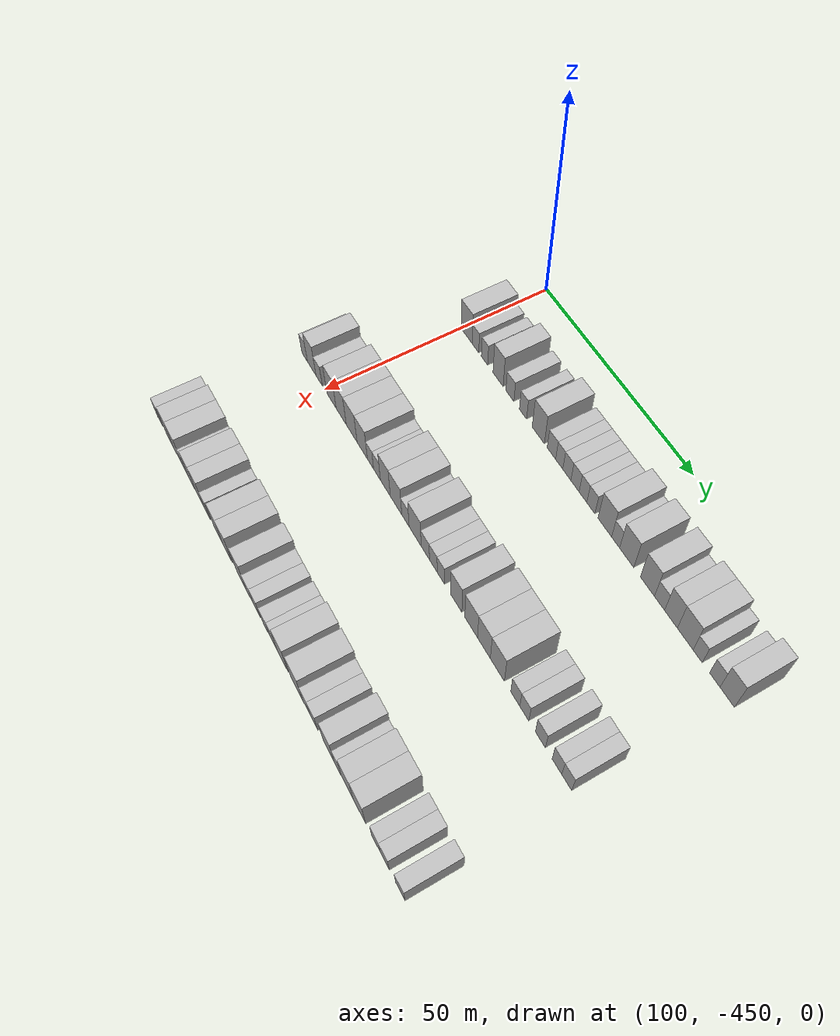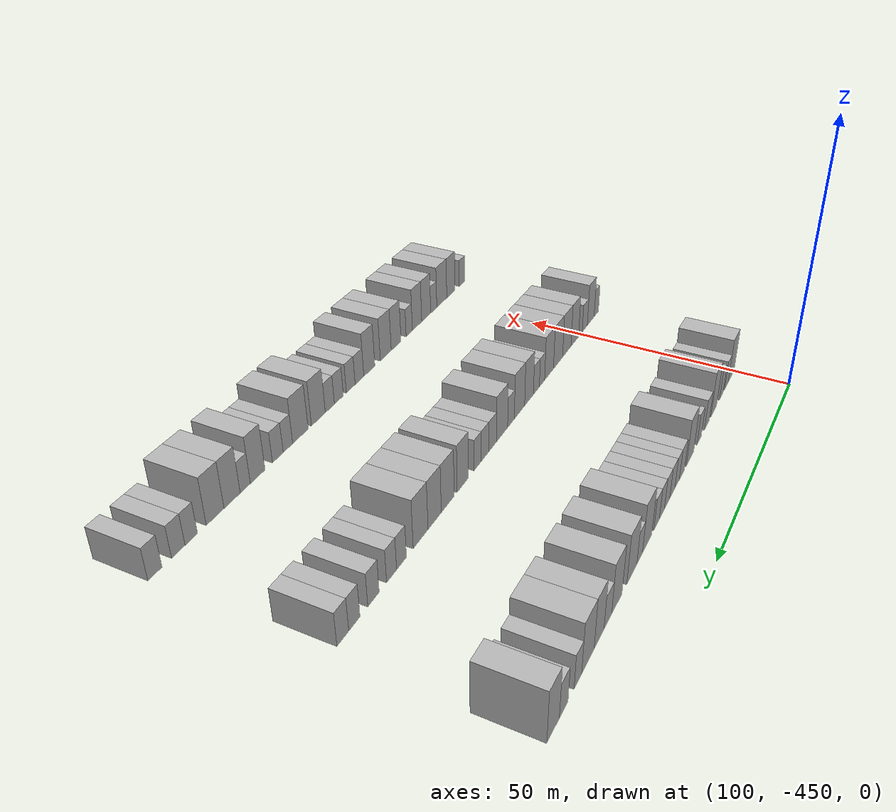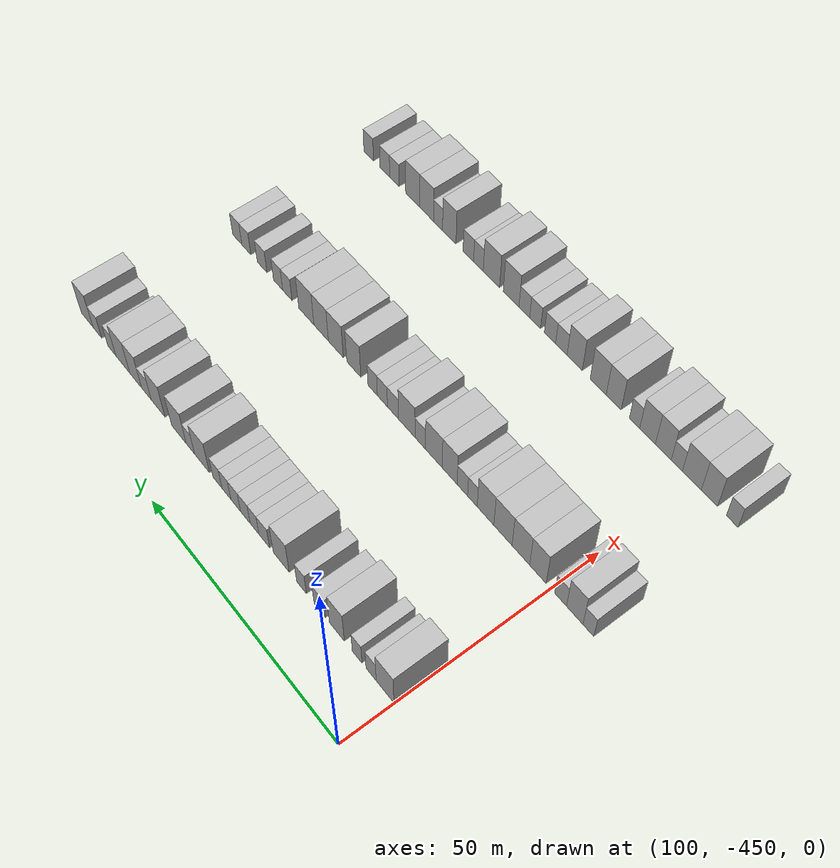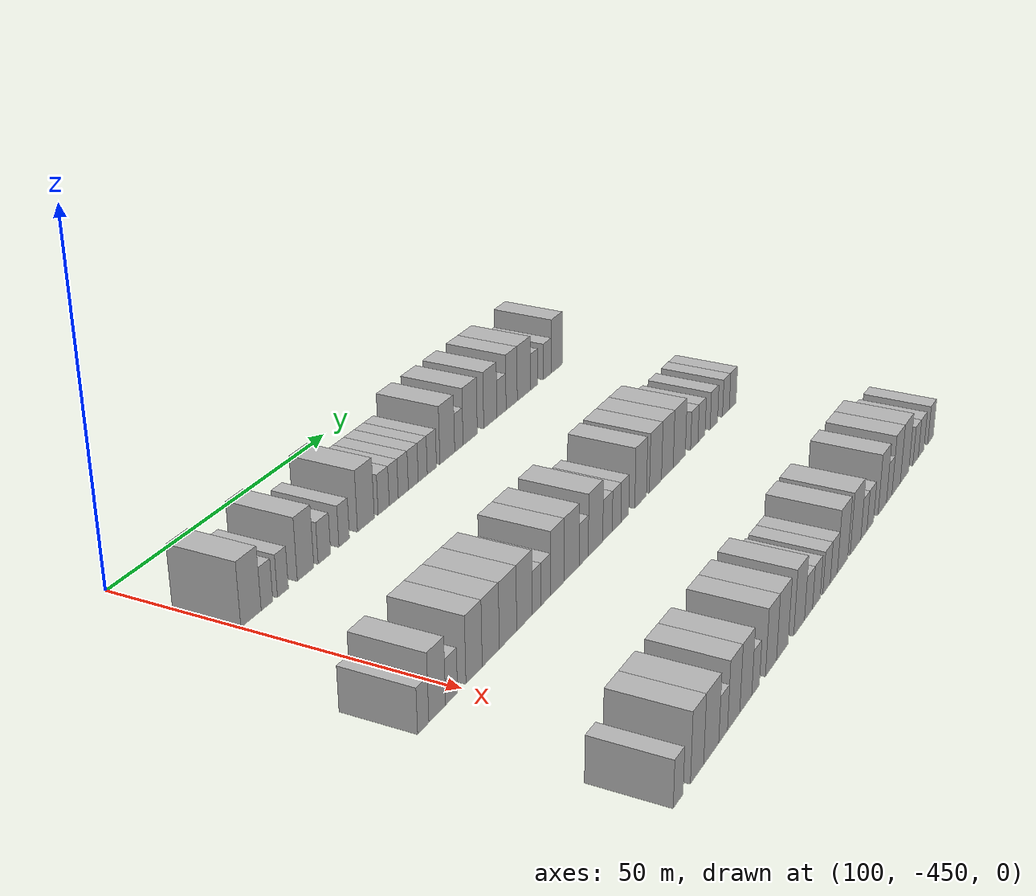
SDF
<sdf version="1.6">
 <world name="default">
  <model name="building_712">
   <static>1</static>
   <pose>115.0000 -447.8181 0 0.000000 0.000000 0.000000</pose>
   <link name="link">
    <pose>0 0 4.50 0 0 0</pose>
    <collision name="collision"><geometry><box><size>10.0000 4.3004 9.0000</size></box></geometry></collision>
    <visual name="visual">
     <cast_shadows>0</cast_shadows>
     <geometry><box><size>10.0000 4.3004 9.0000</size></box></geometry>
     <material>
      <script>
       <uri>model://HANNAS_wall/materials/scripts</uri>
       <uri>model://HANNAS_wall/materials/textures</uri>
       <name>vrc/HANNAS_wall</name>
      </script>
     </material>
    </visual>
   </link>
  </model>
  <model name="building_713">
   <static>1</static>
   <pose>115.0000 -444.4069 0 0.000000 0.000000 0.000000</pose>
   <link name="link">
    <pose>0 0 3.00 0 0 0</pose>
    <collision name="collision"><geometry><box><size>10.0000 2.5220 6.0000</size></box></geometry></collision>
    <visual name="visual">
     <cast_shadows>0</cast_shadows>
     <geometry><box><size>10.0000 2.5220 6.0000</size></box></geometry>
     <material>
      <script>
       <uri>model://HANNAS_wall/materials/scripts</uri>
       <uri>model://HANNAS_wall/materials/textures</uri>
       <name>vrc/HANNAS_wall</name>
      </script>
     </material>
    </visual>
   </link>
  </model>
  <model name="building_714">
   <static>1</static>
   <pose>115.0000 -440.9302 0 0.000000 0.000000 0.000000</pose>
   <link name="link">
    <pose>0 0 3.00 0 0 0</pose>
    <collision name="collision"><geometry><box><size>10.0000 2.4313 6.0000</size></box></geometry></collision>
    <visual name="visual">
     <cast_shadows>0</cast_shadows>
     <geometry><box><size>10.0000 2.4313 6.0000</size></box></geometry>
     <material>
      <script>
       <uri>model://HANNAS_wall/materials/scripts</uri>
       <uri>model://HANNAS_wall/materials/textures</uri>
       <name>vrc/HANNAS_wall</name>
      </script>
     </material>
    </visual>
   </link>
  </model>
  <model name="building_715">
   <static>1</static>
   <pose>115.0000 -435.8096 0 0.000000 0.000000 0.000000</pose>
   <link name="link">
    <pose>0 0 4.50 0 0 0</pose>
    <collision name="collision"><geometry><box><size>10.0000 3.8099 9.0000</size></box></geometry></collision>
    <visual name="visual">
     <cast_shadows>0</cast_shadows>
     <geometry><box><size>10.0000 3.8099 9.0000</size></box></geometry>
     <material>
      <script>
       <uri>model://HANNAS_wall/materials/scripts</uri>
       <uri>model://HANNAS_wall/materials/textures</uri>
       <name>vrc/HANNAS_wall</name>
      </script>
     </material>
    </visual>
   </link>
  </model>
  <model name="building_716">
   <static>1</static>
   <pose>115.0000 -431.4215 0 0.000000 0.000000 0.000000</pose>
   <link name="link">
    <pose>0 0 3.00 0 0 0</pose>
    <collision name="collision"><geometry><box><size>10.0000 2.9664 6.0000</size></box></geometry></collision>
    <visual name="visual">
     <cast_shadows>0</cast_shadows>
     <geometry><box><size>10.0000 2.9664 6.0000</size></box></geometry>
     <material>
      <script>
       <uri>model://HANNAS_wall/materials/scripts</uri>
       <uri>model://HANNAS_wall/materials/textures</uri>
       <name>vrc/HANNAS_wall</name>
      </script>
     </material>
    </visual>
   </link>
  </model>
  <model name="building_717">
   <static>1</static>
   <pose>115.0000 -426.6577 0 0.000000 0.000000 0.000000</pose>
   <link name="link">
    <pose>0 0 3.00 0 0 0</pose>
    <collision name="collision"><geometry><box><size>10.0000 2.5613 6.0000</size></box></geometry></collision>
    <visual name="visual">
     <cast_shadows>0</cast_shadows>
     <geometry><box><size>10.0000 2.5613 6.0000</size></box></geometry>
     <material>
      <script>
       <uri>model://HANNAS_wall/materials/scripts</uri>
       <uri>model://HANNAS_wall/materials/textures</uri>
       <name>vrc/HANNAS_wall</name>
      </script>
     </material>
    </visual>
   </link>
  </model>
  <model name="building_718">
   <static>1</static>
   <pose>115.0000 -421.2447 0 0.000000 0.000000 0.000000</pose>
   <link name="link">
    <pose>0 0 4.50 0 0 0</pose>
    <collision name="collision"><geometry><box><size>10.0000 4.2646 9.0000</size></box></geometry></collision>
    <visual name="visual">
     <cast_shadows>0</cast_shadows>
     <geometry><box><size>10.0000 4.2646 9.0000</size></box></geometry>
     <material>
      <script>
       <uri>model://HANNAS_wall/materials/scripts</uri>
       <uri>model://HANNAS_wall/materials/textures</uri>
       <name>vrc/HANNAS_wall</name>
      </script>
     </material>
    </visual>
   </link>
  </model>
  <model name="building_719">
   <static>1</static>
   <pose>115.0000 -416.6565 0 0.000000 0.000000 0.000000</pose>
   <link name="link">
    <pose>0 0 3.00 0 0 0</pose>
    <collision name="collision"><geometry><box><size>10.0000 2.9118 6.0000</size></box></geometry></collision>
    <visual name="visual">
     <cast_shadows>0</cast_shadows>
     <geometry><box><size>10.0000 2.9118 6.0000</size></box></geometry>
     <material>
      <script>
       <uri>model://HANNAS_wall/materials/scripts</uri>
       <uri>model://HANNAS_wall/materials/textures</uri>
       <name>vrc/HANNAS_wall</name>
      </script>
     </material>
    </visual>
   </link>
  </model>
  <model name="building_720">
   <static>1</static>
   <pose>115.0000 -413.9962 0 0.000000 0.000000 0.000000</pose>
   <link name="link">
    <pose>0 0 3.00 0 0 0</pose>
    <collision name="collision"><geometry><box><size>10.0000 2.4090 6.0000</size></box></geometry></collision>
    <visual name="visual">
     <cast_shadows>0</cast_shadows>
     <geometry><box><size>10.0000 2.4090 6.0000</size></box></geometry>
     <material>
      <script>
       <uri>model://HANNAS_wall/materials/scripts</uri>
       <uri>model://HANNAS_wall/materials/textures</uri>
       <name>vrc/HANNAS_wall</name>
      </script>
     </material>
    </visual>
   </link>
  </model>
  <model name="building_721">
   <static>1</static>
   <pose>115.0000 -411.4315 0 0.000000 0.000000 0.000000</pose>
   <link name="link">
    <pose>0 0 3.00 0 0 0</pose>
    <collision name="collision"><geometry><box><size>10.0000 2.7204 6.0000</size></box></geometry></collision>
    <visual name="visual">
     <cast_shadows>0</cast_shadows>
     <geometry><box><size>10.0000 2.7204 6.0000</size></box></geometry>
     <material>
      <script>
       <uri>model://HANNAS_wall/materials/scripts</uri>
       <uri>model://HANNAS_wall/materials/textures</uri>
       <name>vrc/HANNAS_wall</name>
      </script>
     </material>
    </visual>
   </link>
  </model>
  <model name="building_722">
   <static>1</static>
   <pose>115.0000 -408.7054 0 0.000000 0.000000 0.000000</pose>
   <link name="link">
    <pose>0 0 3.00 0 0 0</pose>
    <collision name="collision"><geometry><box><size>10.0000 2.7317 6.0000</size></box></geometry></collision>
    <visual name="visual">
     <cast_shadows>0</cast_shadows>
     <geometry><box><size>10.0000 2.7317 6.0000</size></box></geometry>
     <material>
      <script>
       <uri>model://HANNAS_wall/materials/scripts</uri>
       <uri>model://HANNAS_wall/materials/textures</uri>
       <name>vrc/HANNAS_wall</name>
      </script>
     </material>
    </visual>
   </link>
  </model>
  <model name="building_723">
   <static>1</static>
   <pose>115.0000 -406.0790 0 0.000000 0.000000 0.000000</pose>
   <link name="link">
    <pose>0 0 3.00 0 0 0</pose>
    <collision name="collision"><geometry><box><size>10.0000 2.5212 6.0000</size></box></geometry></collision>
    <visual name="visual">
     <cast_shadows>0</cast_shadows>
     <geometry><box><size>10.0000 2.5212 6.0000</size></box></geometry>
     <material>
      <script>
       <uri>model://HANNAS_wall/materials/scripts</uri>
       <uri>model://HANNAS_wall/materials/textures</uri>
       <name>vrc/HANNAS_wall</name>
      </script>
     </material>
    </visual>
   </link>
  </model>
  <model name="building_724">
   <static>1</static>
   <pose>115.0000 -403.5086 0 0.000000 0.000000 0.000000</pose>
   <link name="link">
    <pose>0 0 3.00 0 0 0</pose>
    <collision name="collision"><geometry><box><size>10.0000 2.6195 6.0000</size></box></geometry></collision>
    <visual name="visual">
     <cast_shadows>0</cast_shadows>
     <geometry><box><size>10.0000 2.6195 6.0000</size></box></geometry>
     <material>
      <script>
       <uri>model://HANNAS_wall/materials/scripts</uri>
       <uri>model://HANNAS_wall/materials/textures</uri>
       <name>vrc/HANNAS_wall</name>
      </script>
     </material>
    </visual>
   </link>
  </model>
  <model name="building_725">
   <static>1</static>
   <pose>115.0000 -399.0320 0 0.000000 0.000000 0.000000</pose>
   <link name="link">
    <pose>0 0 4.50 0 0 0</pose>
    <collision name="collision"><geometry><box><size>10.0000 4.3337 9.0000</size></box></geometry></collision>
    <visual name="visual">
     <cast_shadows>0</cast_shadows>
     <geometry><box><size>10.0000 4.3337 9.0000</size></box></geometry>
     <material>
      <script>
       <uri>model://HANNAS_wall/materials/scripts</uri>
       <uri>model://HANNAS_wall/materials/textures</uri>
       <name>vrc/HANNAS_wall</name>
      </script>
     </material>
    </visual>
   </link>
  </model>
  <model name="building_726">
   <static>1</static>
   <pose>115.0000 -395.6186 0 0.000000 0.000000 0.000000</pose>
   <link name="link">
    <pose>0 0 3.00 0 0 0</pose>
    <collision name="collision"><geometry><box><size>10.0000 2.4930 6.0000</size></box></geometry></collision>
    <visual name="visual">
     <cast_shadows>0</cast_shadows>
     <geometry><box><size>10.0000 2.4930 6.0000</size></box></geometry>
     <material>
      <script>
       <uri>model://HANNAS_wall/materials/scripts</uri>
       <uri>model://HANNAS_wall/materials/textures</uri>
       <name>vrc/HANNAS_wall</name>
      </script>
     </material>
    </visual>
   </link>
  </model>
  <model name="building_727">
   <static>1</static>
   <pose>115.0000 -392.2005 0 0.000000 0.000000 0.000000</pose>
   <link name="link">
    <pose>0 0 4.50 0 0 0</pose>
    <collision name="collision"><geometry><box><size>10.0000 4.3433 9.0000</size></box></geometry></collision>
    <visual name="visual">
     <cast_shadows>0</cast_shadows>
     <geometry><box><size>10.0000 4.3433 9.0000</size></box></geometry>
     <material>
      <script>
       <uri>model://HANNAS_wall/materials/scripts</uri>
       <uri>model://HANNAS_wall/materials/textures</uri>
       <name>vrc/HANNAS_wall</name>
      </script>
     </material>
    </visual>
   </link>
  </model>
  <model name="building_728">
   <static>1</static>
   <pose>115.0000 -385.9359 0 0.000000 0.000000 0.000000</pose>
   <link name="link">
    <pose>0 0 4.50 0 0 0</pose>
    <collision name="collision"><geometry><box><size>10.0000 4.1857 9.0000</size></box></geometry></collision>
    <visual name="visual">
     <cast_shadows>0</cast_shadows>
     <geometry><box><size>10.0000 4.1857 9.0000</size></box></geometry>
     <material>
      <script>
       <uri>model://HANNAS_wall/materials/scripts</uri>
       <uri>model://HANNAS_wall/materials/textures</uri>
       <name>vrc/HANNAS_wall</name>
      </script>
     </material>
    </visual>
   </link>
  </model>
  <model name="building_729">
   <static>1</static>
   <pose>115.0000 -382.3604 0 0.000000 0.000000 0.000000</pose>
   <link name="link">
    <pose>0 0 3.00 0 0 0</pose>
    <collision name="collision"><geometry><box><size>10.0000 2.9652 6.0000</size></box></geometry></collision>
    <visual name="visual">
     <cast_shadows>0</cast_shadows>
     <geometry><box><size>10.0000 2.9652 6.0000</size></box></geometry>
     <material>
      <script>
       <uri>model://HANNAS_wall/materials/scripts</uri>
       <uri>model://HANNAS_wall/materials/textures</uri>
       <name>vrc/HANNAS_wall</name>
      </script>
     </material>
    </visual>
   </link>
  </model>
  <model name="building_730">
   <static>1</static>
   <pose>115.0000 -379.0342 0 0.000000 0.000000 0.000000</pose>
   <link name="link">
    <pose>0 0 4.50 0 0 0</pose>
    <collision name="collision"><geometry><box><size>10.0000 3.6872 9.0000</size></box></geometry></collision>
    <visual name="visual">
     <cast_shadows>0</cast_shadows>
     <geometry><box><size>10.0000 3.6872 9.0000</size></box></geometry>
     <material>
      <script>
       <uri>model://HANNAS_wall/materials/scripts</uri>
       <uri>model://HANNAS_wall/materials/textures</uri>
       <name>vrc/HANNAS_wall</name>
      </script>
     </material>
    </visual>
   </link>
  </model>
  <model name="building_731">
   <static>1</static>
   <pose>115.0000 -374.9744 0 0.000000 0.000000 0.000000</pose>
   <link name="link">
    <pose>0 0 4.50 0 0 0</pose>
    <collision name="collision"><geometry><box><size>10.0000 4.4325 9.0000</size></box></geometry></collision>
    <visual name="visual">
     <cast_shadows>0</cast_shadows>
     <geometry><box><size>10.0000 4.4325 9.0000</size></box></geometry>
     <material>
      <script>
       <uri>model://HANNAS_wall/materials/scripts</uri>
       <uri>model://HANNAS_wall/materials/textures</uri>
       <name>vrc/HANNAS_wall</name>
      </script>
     </material>
    </visual>
   </link>
  </model>
  <model name="building_732">
   <static>1</static>
   <pose>115.0000 -371.4761 0 0.000000 0.000000 0.000000</pose>
   <link name="link">
    <pose>0 0 3.00 0 0 0</pose>
    <collision name="collision"><geometry><box><size>10.0000 2.5641 6.0000</size></box></geometry></collision>
    <visual name="visual">
     <cast_shadows>0</cast_shadows>
     <geometry><box><size>10.0000 2.5641 6.0000</size></box></geometry>
     <material>
      <script>
       <uri>model://HANNAS_wall/materials/scripts</uri>
       <uri>model://HANNAS_wall/materials/textures</uri>
       <name>vrc/HANNAS_wall</name>
      </script>
     </material>
    </visual>
   </link>
  </model>
  <model name="building_733">
   <static>1</static>
   <pose>115.0000 -366.7879 0 0.000000 0.000000 0.000000</pose>
   <link name="link">
    <pose>0 0 3.00 0 0 0</pose>
    <collision name="collision"><geometry><box><size>10.0000 2.8123 6.0000</size></box></geometry></collision>
    <visual name="visual">
     <cast_shadows>0</cast_shadows>
     <geometry><box><size>10.0000 2.8123 6.0000</size></box></geometry>
     <material>
      <script>
       <uri>model://HANNAS_wall/materials/scripts</uri>
       <uri>model://HANNAS_wall/materials/textures</uri>
       <name>vrc/HANNAS_wall</name>
      </script>
     </material>
    </visual>
   </link>
  </model>
  <model name="building_734">
   <static>1</static>
   <pose>115.0000 -363.4518 0 0.000000 0.000000 0.000000</pose>
   <link name="link">
    <pose>0 0 4.50 0 0 0</pose>
    <collision name="collision"><geometry><box><size>10.0000 3.8599 9.0000</size></box></geometry></collision>
    <visual name="visual">
     <cast_shadows>0</cast_shadows>
     <geometry><box><size>10.0000 3.8599 9.0000</size></box></geometry>
     <material>
      <script>
       <uri>model://HANNAS_wall/materials/scripts</uri>
       <uri>model://HANNAS_wall/materials/textures</uri>
       <name>vrc/HANNAS_wall</name>
      </script>
     </material>
    </visual>
   </link>
  </model>
  <model name="building_944">
   <static>1</static>
   <pose>145.0000 -458.7607 0 0.000000 0.000000 0.000000</pose>
   <link name="link">
    <pose>0 0 3.00 0 0 0</pose>
    <collision name="collision"><geometry><box><size>10.0000 2.4785 6.0000</size></box></geometry></collision>
    <visual name="visual">
     <cast_shadows>0</cast_shadows>
     <geometry><box><size>10.0000 2.4785 6.0000</size></box></geometry>
     <material>
      <script>
       <uri>model://HANNAS_wall/materials/scripts</uri>
       <uri>model://HANNAS_wall/materials/textures</uri>
       <name>vrc/HANNAS_wall</name>
      </script>
     </material>
    </visual>
   </link>
  </model>
  <model name="building_945">
   <static>1</static>
   <pose>145.0000 -455.6250 0 0.000000 0.000000 0.000000</pose>
   <link name="link">
    <pose>0 0 4.50 0 0 0</pose>
    <collision name="collision"><geometry><box><size>10.0000 3.7929 9.0000</size></box></geometry></collision>
    <visual name="visual">
     <cast_shadows>0</cast_shadows>
     <geometry><box><size>10.0000 3.7929 9.0000</size></box></geometry>
     <material>
      <script>
       <uri>model://HANNAS_wall/materials/scripts</uri>
       <uri>model://HANNAS_wall/materials/textures</uri>
       <name>vrc/HANNAS_wall</name>
      </script>
     </material>
    </visual>
   </link>
  </model>
  <model name="building_946">
   <static>1</static>
   <pose>145.0000 -452.3560 0 0.000000 0.000000 0.000000</pose>
   <link name="link">
    <pose>0 0 3.00 0 0 0</pose>
    <collision name="collision"><geometry><box><size>10.0000 2.7452 6.0000</size></box></geometry></collision>
    <visual name="visual">
     <cast_shadows>0</cast_shadows>
     <geometry><box><size>10.0000 2.7452 6.0000</size></box></geometry>
     <material>
      <script>
       <uri>model://HANNAS_wall/materials/scripts</uri>
       <uri>model://HANNAS_wall/materials/textures</uri>
       <name>vrc/HANNAS_wall</name>
      </script>
     </material>
    </visual>
   </link>
  </model>
  <model name="building_947">
   <static>1</static>
   <pose>145.0000 -447.0132 0 0.000000 0.000000 0.000000</pose>
   <link name="link">
    <pose>0 0 4.50 0 0 0</pose>
    <collision name="collision"><geometry><box><size>10.0000 3.9402 9.0000</size></box></geometry></collision>
    <visual name="visual">
     <cast_shadows>0</cast_shadows>
     <geometry><box><size>10.0000 3.9402 9.0000</size></box></geometry>
     <material>
      <script>
       <uri>model://HANNAS_wall/materials/scripts</uri>
       <uri>model://HANNAS_wall/materials/textures</uri>
       <name>vrc/HANNAS_wall</name>
      </script>
     </material>
    </visual>
   </link>
  </model>
  <model name="building_948">
   <static>1</static>
   <pose>145.0000 -442.9166 0 0.000000 0.000000 0.000000</pose>
   <link name="link">
    <pose>0 0 4.50 0 0 0</pose>
    <collision name="collision"><geometry><box><size>10.0000 4.2531 9.0000</size></box></geometry></collision>
    <visual name="visual">
     <cast_shadows>0</cast_shadows>
     <geometry><box><size>10.0000 4.2531 9.0000</size></box></geometry>
     <material>
      <script>
       <uri>model://HANNAS_wall/materials/scripts</uri>
       <uri>model://HANNAS_wall/materials/textures</uri>
       <name>vrc/HANNAS_wall</name>
      </script>
     </material>
    </visual>
   </link>
  </model>
  <model name="building_949">
   <static>1</static>
   <pose>145.0000 -438.5523 0 0.000000 0.000000 0.000000</pose>
   <link name="link">
    <pose>0 0 4.50 0 0 0</pose>
    <collision name="collision"><geometry><box><size>10.0000 4.4755 9.0000</size></box></geometry></collision>
    <visual name="visual">
     <cast_shadows>0</cast_shadows>
     <geometry><box><size>10.0000 4.4755 9.0000</size></box></geometry>
     <material>
      <script>
       <uri>model://HANNAS_wall/materials/scripts</uri>
       <uri>model://HANNAS_wall/materials/textures</uri>
       <name>vrc/HANNAS_wall</name>
      </script>
     </material>
    </visual>
   </link>
  </model>
  <model name="building_950">
   <static>1</static>
   <pose>145.0000 -434.2355 0 0.000000 0.000000 0.000000</pose>
   <link name="link">
    <pose>0 0 4.50 0 0 0</pose>
    <collision name="collision"><geometry><box><size>10.0000 4.1579 9.0000</size></box></geometry></collision>
    <visual name="visual">
     <cast_shadows>0</cast_shadows>
     <geometry><box><size>10.0000 4.1579 9.0000</size></box></geometry>
     <material>
      <script>
       <uri>model://HANNAS_wall/materials/scripts</uri>
       <uri>model://HANNAS_wall/materials/textures</uri>
       <name>vrc/HANNAS_wall</name>
      </script>
     </material>
    </visual>
   </link>
  </model>
  <model name="building_951">
   <static>1</static>
   <pose>145.0000 -430.9520 0 0.000000 0.000000 0.000000</pose>
   <link name="link">
    <pose>0 0 3.00 0 0 0</pose>
    <collision name="collision"><geometry><box><size>10.0000 2.4091 6.0000</size></box></geometry></collision>
    <visual name="visual">
     <cast_shadows>0</cast_shadows>
     <geometry><box><size>10.0000 2.4091 6.0000</size></box></geometry>
     <material>
      <script>
       <uri>model://HANNAS_wall/materials/scripts</uri>
       <uri>model://HANNAS_wall/materials/textures</uri>
       <name>vrc/HANNAS_wall</name>
      </script>
     </material>
    </visual>
   </link>
  </model>
  <model name="building_952">
   <static>1</static>
   <pose>145.0000 -428.4079 0 0.000000 0.000000 0.000000</pose>
   <link name="link">
    <pose>0 0 3.00 0 0 0</pose>
    <collision name="collision"><geometry><box><size>10.0000 2.6790 6.0000</size></box></geometry></collision>
    <visual name="visual">
     <cast_shadows>0</cast_shadows>
     <geometry><box><size>10.0000 2.6790 6.0000</size></box></geometry>
     <material>
      <script>
       <uri>model://HANNAS_wall/materials/scripts</uri>
       <uri>model://HANNAS_wall/materials/textures</uri>
       <name>vrc/HANNAS_wall</name>
      </script>
     </material>
    </visual>
   </link>
  </model>
  <model name="building_953">
   <static>1</static>
   <pose>145.0000 -425.1473 0 0.000000 0.000000 0.000000</pose>
   <link name="link">
    <pose>0 0 4.50 0 0 0</pose>
    <collision name="collision"><geometry><box><size>10.0000 3.8423 9.0000</size></box></geometry></collision>
    <visual name="visual">
     <cast_shadows>0</cast_shadows>
     <geometry><box><size>10.0000 3.8423 9.0000</size></box></geometry>
     <material>
      <script>
       <uri>model://HANNAS_wall/materials/scripts</uri>
       <uri>model://HANNAS_wall/materials/textures</uri>
       <name>vrc/HANNAS_wall</name>
      </script>
     </material>
    </visual>
   </link>
  </model>
  <model name="building_954">
   <static>1</static>
   <pose>145.0000 -421.0540 0 0.000000 0.000000 0.000000</pose>
   <link name="link">
    <pose>0 0 4.50 0 0 0</pose>
    <collision name="collision"><geometry><box><size>10.0000 4.3444 9.0000</size></box></geometry></collision>
    <visual name="visual">
     <cast_shadows>0</cast_shadows>
     <geometry><box><size>10.0000 4.3444 9.0000</size></box></geometry>
     <material>
      <script>
       <uri>model://HANNAS_wall/materials/scripts</uri>
       <uri>model://HANNAS_wall/materials/textures</uri>
       <name>vrc/HANNAS_wall</name>
      </script>
     </material>
    </visual>
   </link>
  </model>
  <model name="building_955">
   <static>1</static>
   <pose>145.0000 -417.5041 0 0.000000 0.000000 0.000000</pose>
   <link name="link">
    <pose>0 0 3.00 0 0 0</pose>
    <collision name="collision"><geometry><box><size>10.0000 2.7552 6.0000</size></box></geometry></collision>
    <visual name="visual">
     <cast_shadows>0</cast_shadows>
     <geometry><box><size>10.0000 2.7552 6.0000</size></box></geometry>
     <material>
      <script>
       <uri>model://HANNAS_wall/materials/scripts</uri>
       <uri>model://HANNAS_wall/materials/textures</uri>
       <name>vrc/HANNAS_wall</name>
      </script>
     </material>
    </visual>
   </link>
  </model>
  <model name="building_956">
   <static>1</static>
   <pose>145.0000 -413.9074 0 0.000000 0.000000 0.000000</pose>
   <link name="link">
    <pose>0 0 4.50 0 0 0</pose>
    <collision name="collision"><geometry><box><size>10.0000 4.4382 9.0000</size></box></geometry></collision>
    <visual name="visual">
     <cast_shadows>0</cast_shadows>
     <geometry><box><size>10.0000 4.4382 9.0000</size></box></geometry>
     <material>
      <script>
       <uri>model://HANNAS_wall/materials/scripts</uri>
       <uri>model://HANNAS_wall/materials/textures</uri>
       <name>vrc/HANNAS_wall</name>
      </script>
     </material>
    </visual>
   </link>
  </model>
  <model name="building_957">
   <static>1</static>
   <pose>145.0000 -410.1915 0 0.000000 0.000000 0.000000</pose>
   <link name="link">
    <pose>0 0 3.00 0 0 0</pose>
    <collision name="collision"><geometry><box><size>10.0000 2.9937 6.0000</size></box></geometry></collision>
    <visual name="visual">
     <cast_shadows>0</cast_shadows>
     <geometry><box><size>10.0000 2.9937 6.0000</size></box></geometry>
     <material>
      <script>
       <uri>model://HANNAS_wall/materials/scripts</uri>
       <uri>model://HANNAS_wall/materials/textures</uri>
       <name>vrc/HANNAS_wall</name>
      </script>
     </material>
    </visual>
   </link>
  </model>
  <model name="building_958">
   <static>1</static>
   <pose>145.0000 -407.3139 0 0.000000 0.000000 0.000000</pose>
   <link name="link">
    <pose>0 0 3.00 0 0 0</pose>
    <collision name="collision"><geometry><box><size>10.0000 2.7615 6.0000</size></box></geometry></collision>
    <visual name="visual">
     <cast_shadows>0</cast_shadows>
     <geometry><box><size>10.0000 2.7615 6.0000</size></box></geometry>
     <material>
      <script>
       <uri>model://HANNAS_wall/materials/scripts</uri>
       <uri>model://HANNAS_wall/materials/textures</uri>
       <name>vrc/HANNAS_wall</name>
      </script>
     </material>
    </visual>
   </link>
  </model>
  <model name="building_959">
   <static>1</static>
   <pose>145.0000 -404.6447 0 0.000000 0.000000 0.000000</pose>
   <link name="link">
    <pose>0 0 3.00 0 0 0</pose>
    <collision name="collision"><geometry><box><size>10.0000 2.5768 6.0000</size></box></geometry></collision>
    <visual name="visual">
     <cast_shadows>0</cast_shadows>
     <geometry><box><size>10.0000 2.5768 6.0000</size></box></geometry>
     <material>
      <script>
       <uri>model://HANNAS_wall/materials/scripts</uri>
       <uri>model://HANNAS_wall/materials/textures</uri>
       <name>vrc/HANNAS_wall</name>
      </script>
     </material>
    </visual>
   </link>
  </model>
  <model name="building_960">
   <static>1</static>
   <pose>145.0000 -399.3787 0 0.000000 0.000000 0.000000</pose>
   <link name="link">
    <pose>0 0 4.50 0 0 0</pose>
    <collision name="collision"><geometry><box><size>10.0000 3.9552 9.0000</size></box></geometry></collision>
    <visual name="visual">
     <cast_shadows>0</cast_shadows>
     <geometry><box><size>10.0000 3.9552 9.0000</size></box></geometry>
     <material>
      <script>
       <uri>model://HANNAS_wall/materials/scripts</uri>
       <uri>model://HANNAS_wall/materials/textures</uri>
       <name>vrc/HANNAS_wall</name>
      </script>
     </material>
    </visual>
   </link>
  </model>
  <model name="building_961">
   <static>1</static>
   <pose>145.0000 -394.2776 0 0.000000 0.000000 0.000000</pose>
   <link name="link">
    <pose>0 0 4.50 0 0 0</pose>
    <collision name="collision"><geometry><box><size>10.0000 4.2470 9.0000</size></box></geometry></collision>
    <visual name="visual">
     <cast_shadows>0</cast_shadows>
     <geometry><box><size>10.0000 4.2470 9.0000</size></box></geometry>
     <material>
      <script>
       <uri>model://HANNAS_wall/materials/scripts</uri>
       <uri>model://HANNAS_wall/materials/textures</uri>
       <name>vrc/HANNAS_wall</name>
      </script>
     </material>
    </visual>
   </link>
  </model>
  <model name="building_962">
   <static>1</static>
   <pose>145.0000 -390.0511 0 0.000000 0.000000 0.000000</pose>
   <link name="link">
    <pose>0 0 4.50 0 0 0</pose>
    <collision name="collision"><geometry><box><size>10.0000 4.2060 9.0000</size></box></geometry></collision>
    <visual name="visual">
     <cast_shadows>0</cast_shadows>
     <geometry><box><size>10.0000 4.2060 9.0000</size></box></geometry>
     <material>
      <script>
       <uri>model://HANNAS_wall/materials/scripts</uri>
       <uri>model://HANNAS_wall/materials/textures</uri>
       <name>vrc/HANNAS_wall</name>
      </script>
     </material>
    </visual>
   </link>
  </model>
  <model name="building_963">
   <static>1</static>
   <pose>145.0000 -385.7084 0 0.000000 0.000000 0.000000</pose>
   <link name="link">
    <pose>0 0 4.50 0 0 0</pose>
    <collision name="collision"><geometry><box><size>10.0000 4.4795 9.0000</size></box></geometry></collision>
    <visual name="visual">
     <cast_shadows>0</cast_shadows>
     <geometry><box><size>10.0000 4.4795 9.0000</size></box></geometry>
     <material>
      <script>
       <uri>model://HANNAS_wall/materials/scripts</uri>
       <uri>model://HANNAS_wall/materials/textures</uri>
       <name>vrc/HANNAS_wall</name>
      </script>
     </material>
    </visual>
   </link>
  </model>
  <model name="building_964">
   <static>1</static>
   <pose>145.0000 -380.0653 0 0.000000 0.000000 0.000000</pose>
   <link name="link">
    <pose>0 0 3.00 0 0 0</pose>
    <collision name="collision"><geometry><box><size>10.0000 2.8068 6.0000</size></box></geometry></collision>
    <visual name="visual">
     <cast_shadows>0</cast_shadows>
     <geometry><box><size>10.0000 2.8068 6.0000</size></box></geometry>
     <material>
      <script>
       <uri>model://HANNAS_wall/materials/scripts</uri>
       <uri>model://HANNAS_wall/materials/textures</uri>
       <name>vrc/HANNAS_wall</name>
      </script>
     </material>
    </visual>
   </link>
  </model>
  <model name="building_965">
   <static>1</static>
   <pose>145.0000 -377.2795 0 0.000000 0.000000 0.000000</pose>
   <link name="link">
    <pose>0 0 3.00 0 0 0</pose>
    <collision name="collision"><geometry><box><size>10.0000 2.7648 6.0000</size></box></geometry></collision>
    <visual name="visual">
     <cast_shadows>0</cast_shadows>
     <geometry><box><size>10.0000 2.7648 6.0000</size></box></geometry>
     <material>
      <script>
       <uri>model://HANNAS_wall/materials/scripts</uri>
       <uri>model://HANNAS_wall/materials/textures</uri>
       <name>vrc/HANNAS_wall</name>
      </script>
     </material>
    </visual>
   </link>
  </model>
  <model name="building_966">
   <static>1</static>
   <pose>145.0000 -372.4047 0 0.000000 0.000000 0.000000</pose>
   <link name="link">
    <pose>0 0 3.00 0 0 0</pose>
    <collision name="collision"><geometry><box><size>10.0000 2.9848 6.0000</size></box></geometry></collision>
    <visual name="visual">
     <cast_shadows>0</cast_shadows>
     <geometry><box><size>10.0000 2.9848 6.0000</size></box></geometry>
     <material>
      <script>
       <uri>model://HANNAS_wall/materials/scripts</uri>
       <uri>model://HANNAS_wall/materials/textures</uri>
       <name>vrc/HANNAS_wall</name>
      </script>
     </material>
    </visual>
   </link>
  </model>
  <model name="building_967">
   <static>1</static>
   <pose>145.0000 -367.5128 0 0.000000 0.000000 0.000000</pose>
   <link name="link">
    <pose>0 0 3.00 0 0 0</pose>
    <collision name="collision"><geometry><box><size>10.0000 2.7992 6.0000</size></box></geometry></collision>
    <visual name="visual">
     <cast_shadows>0</cast_shadows>
     <geometry><box><size>10.0000 2.7992 6.0000</size></box></geometry>
     <material>
      <script>
       <uri>model://HANNAS_wall/materials/scripts</uri>
       <uri>model://HANNAS_wall/materials/textures</uri>
       <name>vrc/HANNAS_wall</name>
      </script>
     </material>
    </visual>
   </link>
  </model>
  <model name="building_968">
   <static>1</static>
   <pose>145.0000 -364.6813 0 0.000000 0.000000 0.000000</pose>
   <link name="link">
    <pose>0 0 3.00 0 0 0</pose>
    <collision name="collision"><geometry><box><size>10.0000 2.8637 6.0000</size></box></geometry></collision>
    <visual name="visual">
     <cast_shadows>0</cast_shadows>
     <geometry><box><size>10.0000 2.8637 6.0000</size></box></geometry>
     <material>
      <script>
       <uri>model://HANNAS_wall/materials/scripts</uri>
       <uri>model://HANNAS_wall/materials/textures</uri>
       <name>vrc/HANNAS_wall</name>
      </script>
     </material>
    </visual>
   </link>
  </model>
  <model name="building_1161">
   <static>1</static>
   <pose>175.0000 -458.6805 0 0.000000 0.000000 0.000000</pose>
   <link name="link">
    <pose>0 0 3.00 0 0 0</pose>
    <collision name="collision"><geometry><box><size>10.0000 2.6391 6.0000</size></box></geometry></collision>
    <visual name="visual">
     <cast_shadows>0</cast_shadows>
     <geometry><box><size>10.0000 2.6391 6.0000</size></box></geometry>
     <material>
      <script>
       <uri>model://HANNAS_wall/materials/scripts</uri>
       <uri>model://HANNAS_wall/materials/textures</uri>
       <name>vrc/HANNAS_wall</name>
      </script>
     </material>
    </visual>
   </link>
  </model>
  <model name="building_1162">
   <static>1</static>
   <pose>175.0000 -453.5025 0 0.000000 0.000000 0.000000</pose>
   <link name="link">
    <pose>0 0 4.50 0 0 0</pose>
    <collision name="collision"><geometry><box><size>10.0000 3.7169 9.0000</size></box></geometry></collision>
    <visual name="visual">
     <cast_shadows>0</cast_shadows>
     <geometry><box><size>10.0000 3.7169 9.0000</size></box></geometry>
     <material>
      <script>
       <uri>model://HANNAS_wall/materials/scripts</uri>
       <uri>model://HANNAS_wall/materials/textures</uri>
       <name>vrc/HANNAS_wall</name>
      </script>
     </material>
    </visual>
   </link>
  </model>
  <model name="building_1163">
   <static>1</static>
   <pose>175.0000 -449.4606 0 0.000000 0.000000 0.000000</pose>
   <link name="link">
    <pose>0 0 4.50 0 0 0</pose>
    <collision name="collision"><geometry><box><size>10.0000 4.3670 9.0000</size></box></geometry></collision>
    <visual name="visual">
     <cast_shadows>0</cast_shadows>
     <geometry><box><size>10.0000 4.3670 9.0000</size></box></geometry>
     <material>
      <script>
       <uri>model://HANNAS_wall/materials/scripts</uri>
       <uri>model://HANNAS_wall/materials/textures</uri>
       <name>vrc/HANNAS_wall</name>
      </script>
     </material>
    </visual>
   </link>
  </model>
  <model name="building_1164">
   <static>1</static>
   <pose>175.0000 -445.9668 0 0.000000 0.000000 0.000000</pose>
   <link name="link">
    <pose>0 0 3.00 0 0 0</pose>
    <collision name="collision"><geometry><box><size>10.0000 2.6204 6.0000</size></box></geometry></collision>
    <visual name="visual">
     <cast_shadows>0</cast_shadows>
     <geometry><box><size>10.0000 2.6204 6.0000</size></box></geometry>
     <material>
      <script>
       <uri>model://HANNAS_wall/materials/scripts</uri>
       <uri>model://HANNAS_wall/materials/textures</uri>
       <name>vrc/HANNAS_wall</name>
      </script>
     </material>
    </visual>
   </link>
  </model>
  <model name="building_1165">
   <static>1</static>
   <pose>175.0000 -442.7825 0 0.000000 0.000000 0.000000</pose>
   <link name="link">
    <pose>0 0 4.50 0 0 0</pose>
    <collision name="collision"><geometry><box><size>10.0000 3.7482 9.0000</size></box></geometry></collision>
    <visual name="visual">
     <cast_shadows>0</cast_shadows>
     <geometry><box><size>10.0000 3.7482 9.0000</size></box></geometry>
     <material>
      <script>
       <uri>model://HANNAS_wall/materials/scripts</uri>
       <uri>model://HANNAS_wall/materials/textures</uri>
       <name>vrc/HANNAS_wall</name>
      </script>
     </material>
    </visual>
   </link>
  </model>
  <model name="building_1166">
   <static>1</static>
   <pose>175.0000 -439.0245 0 0.000000 0.000000 0.000000</pose>
   <link name="link">
    <pose>0 0 4.50 0 0 0</pose>
    <collision name="collision"><geometry><box><size>10.0000 3.7677 9.0000</size></box></geometry></collision>
    <visual name="visual">
     <cast_shadows>0</cast_shadows>
     <geometry><box><size>10.0000 3.7677 9.0000</size></box></geometry>
     <material>
      <script>
       <uri>model://HANNAS_wall/materials/scripts</uri>
       <uri>model://HANNAS_wall/materials/textures</uri>
       <name>vrc/HANNAS_wall</name>
      </script>
     </material>
    </visual>
   </link>
  </model>
  <model name="building_1167">
   <static>1</static>
   <pose>175.0000 -435.8946 0 0.000000 0.000000 0.000000</pose>
   <link name="link">
    <pose>0 0 3.00 0 0 0</pose>
    <collision name="collision"><geometry><box><size>10.0000 2.4921 6.0000</size></box></geometry></collision>
    <visual name="visual">
     <cast_shadows>0</cast_shadows>
     <geometry><box><size>10.0000 2.4921 6.0000</size></box></geometry>
     <material>
      <script>
       <uri>model://HANNAS_wall/materials/scripts</uri>
       <uri>model://HANNAS_wall/materials/textures</uri>
       <name>vrc/HANNAS_wall</name>
      </script>
     </material>
    </visual>
   </link>
  </model>
  <model name="building_1168">
   <static>1</static>
   <pose>175.0000 -430.7901 0 0.000000 0.000000 0.000000</pose>
   <link name="link">
    <pose>0 0 4.50 0 0 0</pose>
    <collision name="collision"><geometry><box><size>10.0000 3.7171 9.0000</size></box></geometry></collision>
    <visual name="visual">
     <cast_shadows>0</cast_shadows>
     <geometry><box><size>10.0000 3.7171 9.0000</size></box></geometry>
     <material>
      <script>
       <uri>model://HANNAS_wall/materials/scripts</uri>
       <uri>model://HANNAS_wall/materials/textures</uri>
       <name>vrc/HANNAS_wall</name>
      </script>
     </material>
    </visual>
   </link>
  </model>
  <model name="building_1169">
   <static>1</static>
   <pose>175.0000 -426.9254 0 0.000000 0.000000 0.000000</pose>
   <link name="link">
    <pose>0 0 4.50 0 0 0</pose>
    <collision name="collision"><geometry><box><size>10.0000 4.0122 9.0000</size></box></geometry></collision>
    <visual name="visual">
     <cast_shadows>0</cast_shadows>
     <geometry><box><size>10.0000 4.0122 9.0000</size></box></geometry>
     <material>
      <script>
       <uri>model://HANNAS_wall/materials/scripts</uri>
       <uri>model://HANNAS_wall/materials/textures</uri>
       <name>vrc/HANNAS_wall</name>
      </script>
     </material>
    </visual>
   </link>
  </model>
  <model name="building_1170">
   <static>1</static>
   <pose>175.0000 -420.9744 0 0.000000 0.000000 0.000000</pose>
   <link name="link">
    <pose>0 0 4.50 0 0 0</pose>
    <collision name="collision"><geometry><box><size>10.0000 3.8899 9.0000</size></box></geometry></collision>
    <visual name="visual">
     <cast_shadows>0</cast_shadows>
     <geometry><box><size>10.0000 3.8899 9.0000</size></box></geometry>
     <material>
      <script>
       <uri>model://HANNAS_wall/materials/scripts</uri>
       <uri>model://HANNAS_wall/materials/textures</uri>
       <name>vrc/HANNAS_wall</name>
      </script>
     </material>
    </visual>
   </link>
  </model>
  <model name="building_1171">
   <static>1</static>
   <pose>175.0000 -417.5462 0 0.000000 0.000000 0.000000</pose>
   <link name="link">
    <pose>0 0 3.00 0 0 0</pose>
    <collision name="collision"><geometry><box><size>10.0000 2.9664 6.0000</size></box></geometry></collision>
    <visual name="visual">
     <cast_shadows>0</cast_shadows>
     <geometry><box><size>10.0000 2.9664 6.0000</size></box></geometry>
     <material>
      <script>
       <uri>model://HANNAS_wall/materials/scripts</uri>
       <uri>model://HANNAS_wall/materials/textures</uri>
       <name>vrc/HANNAS_wall</name>
      </script>
     </material>
    </visual>
   </link>
  </model>
  <model name="building_1172">
   <static>1</static>
   <pose>175.0000 -414.6017 0 0.000000 0.000000 0.000000</pose>
   <link name="link">
    <pose>0 0 3.00 0 0 0</pose>
    <collision name="collision"><geometry><box><size>10.0000 2.9227 6.0000</size></box></geometry></collision>
    <visual name="visual">
     <cast_shadows>0</cast_shadows>
     <geometry><box><size>10.0000 2.9227 6.0000</size></box></geometry>
     <material>
      <script>
       <uri>model://HANNAS_wall/materials/scripts</uri>
       <uri>model://HANNAS_wall/materials/textures</uri>
       <name>vrc/HANNAS_wall</name>
      </script>
     </material>
    </visual>
   </link>
  </model>
  <model name="building_1173">
   <static>1</static>
   <pose>175.0000 -410.7002 0 0.000000 0.000000 0.000000</pose>
   <link name="link">
    <pose>0 0 3.00 0 0 0</pose>
    <collision name="collision"><geometry><box><size>10.0000 2.8801 6.0000</size></box></geometry></collision>
    <visual name="visual">
     <cast_shadows>0</cast_shadows>
     <geometry><box><size>10.0000 2.8801 6.0000</size></box></geometry>
     <material>
      <script>
       <uri>model://HANNAS_wall/materials/scripts</uri>
       <uri>model://HANNAS_wall/materials/textures</uri>
       <name>vrc/HANNAS_wall</name>
      </script>
     </material>
    </visual>
   </link>
  </model>
  <model name="building_1174">
   <static>1</static>
   <pose>175.0000 -407.8341 0 0.000000 0.000000 0.000000</pose>
   <link name="link">
    <pose>0 0 3.00 0 0 0</pose>
    <collision name="collision"><geometry><box><size>10.0000 2.8521 6.0000</size></box></geometry></collision>
    <visual name="visual">
     <cast_shadows>0</cast_shadows>
     <geometry><box><size>10.0000 2.8521 6.0000</size></box></geometry>
     <material>
      <script>
       <uri>model://HANNAS_wall/materials/scripts</uri>
       <uri>model://HANNAS_wall/materials/textures</uri>
       <name>vrc/HANNAS_wall</name>
      </script>
     </material>
    </visual>
   </link>
  </model>
  <model name="building_1175">
   <static>1</static>
   <pose>175.0000 -404.2844 0 0.000000 0.000000 0.000000</pose>
   <link name="link">
    <pose>0 0 4.50 0 0 0</pose>
    <collision name="collision"><geometry><box><size>10.0000 4.2472 9.0000</size></box></geometry></collision>
    <visual name="visual">
     <cast_shadows>0</cast_shadows>
     <geometry><box><size>10.0000 4.2472 9.0000</size></box></geometry>
     <material>
      <script>
       <uri>model://HANNAS_wall/materials/scripts</uri>
       <uri>model://HANNAS_wall/materials/textures</uri>
       <name>vrc/HANNAS_wall</name>
      </script>
     </material>
    </visual>
   </link>
  </model>
  <model name="building_1176">
   <static>1</static>
   <pose>175.0000 -398.9136 0 0.000000 0.000000 0.000000</pose>
   <link name="link">
    <pose>0 0 4.50 0 0 0</pose>
    <collision name="collision"><geometry><box><size>10.0000 4.4944 9.0000</size></box></geometry></collision>
    <visual name="visual">
     <cast_shadows>0</cast_shadows>
     <geometry><box><size>10.0000 4.4944 9.0000</size></box></geometry>
     <material>
      <script>
       <uri>model://HANNAS_wall/materials/scripts</uri>
       <uri>model://HANNAS_wall/materials/textures</uri>
       <name>vrc/HANNAS_wall</name>
      </script>
     </material>
    </visual>
   </link>
  </model>
  <model name="building_1177">
   <static>1</static>
   <pose>175.0000 -395.3325 0 0.000000 0.000000 0.000000</pose>
   <link name="link">
    <pose>0 0 3.00 0 0 0</pose>
    <collision name="collision"><geometry><box><size>10.0000 2.6679 6.0000</size></box></geometry></collision>
    <visual name="visual">
     <cast_shadows>0</cast_shadows>
     <geometry><box><size>10.0000 2.6679 6.0000</size></box></geometry>
     <material>
      <script>
       <uri>model://HANNAS_wall/materials/scripts</uri>
       <uri>model://HANNAS_wall/materials/textures</uri>
       <name>vrc/HANNAS_wall</name>
      </script>
     </material>
    </visual>
   </link>
  </model>
  <model name="building_1178">
   <static>1</static>
   <pose>175.0000 -392.5241 0 0.000000 0.000000 0.000000</pose>
   <link name="link">
    <pose>0 0 3.00 0 0 0</pose>
    <collision name="collision"><geometry><box><size>10.0000 2.9490 6.0000</size></box></geometry></collision>
    <visual name="visual">
     <cast_shadows>0</cast_shadows>
     <geometry><box><size>10.0000 2.9490 6.0000</size></box></geometry>
     <material>
      <script>
       <uri>model://HANNAS_wall/materials/scripts</uri>
       <uri>model://HANNAS_wall/materials/textures</uri>
       <name>vrc/HANNAS_wall</name>
      </script>
     </material>
    </visual>
   </link>
  </model>
  <model name="building_1179">
   <static>1</static>
   <pose>175.0000 -387.1280 0 0.000000 0.000000 0.000000</pose>
   <link name="link">
    <pose>0 0 4.50 0 0 0</pose>
    <collision name="collision"><geometry><box><size>10.0000 3.8431 9.0000</size></box></geometry></collision>
    <visual name="visual">
     <cast_shadows>0</cast_shadows>
     <geometry><box><size>10.0000 3.8431 9.0000</size></box></geometry>
     <material>
      <script>
       <uri>model://HANNAS_wall/materials/scripts</uri>
       <uri>model://HANNAS_wall/materials/textures</uri>
       <name>vrc/HANNAS_wall</name>
      </script>
     </material>
    </visual>
   </link>
  </model>
  <model name="building_1180">
   <static>1</static>
   <pose>175.0000 -383.9261 0 0.000000 0.000000 0.000000</pose>
   <link name="link">
    <pose>0 0 3.00 0 0 0</pose>
    <collision name="collision"><geometry><box><size>10.0000 2.5607 6.0000</size></box></geometry></collision>
    <visual name="visual">
     <cast_shadows>0</cast_shadows>
     <geometry><box><size>10.0000 2.5607 6.0000</size></box></geometry>
     <material>
      <script>
       <uri>model://HANNAS_wall/materials/scripts</uri>
       <uri>model://HANNAS_wall/materials/textures</uri>
       <name>vrc/HANNAS_wall</name>
      </script>
     </material>
    </visual>
   </link>
  </model>
  <model name="building_1181">
   <static>1</static>
   <pose>175.0000 -380.6492 0 0.000000 0.000000 0.000000</pose>
   <link name="link">
    <pose>0 0 4.50 0 0 0</pose>
    <collision name="collision"><geometry><box><size>10.0000 3.9931 9.0000</size></box></geometry></collision>
    <visual name="visual">
     <cast_shadows>0</cast_shadows>
     <geometry><box><size>10.0000 3.9931 9.0000</size></box></geometry>
     <material>
      <script>
       <uri>model://HANNAS_wall/materials/scripts</uri>
       <uri>model://HANNAS_wall/materials/textures</uri>
       <name>vrc/HANNAS_wall</name>
      </script>
     </material>
    </visual>
   </link>
  </model>
  <model name="building_1182">
   <static>1</static>
   <pose>175.0000 -376.5601 0 0.000000 0.000000 0.000000</pose>
   <link name="link">
    <pose>0 0 4.50 0 0 0</pose>
    <collision name="collision"><geometry><box><size>10.0000 4.1850 9.0000</size></box></geometry></collision>
    <visual name="visual">
     <cast_shadows>0</cast_shadows>
     <geometry><box><size>10.0000 4.1850 9.0000</size></box></geometry>
     <material>
      <script>
       <uri>model://HANNAS_wall/materials/scripts</uri>
       <uri>model://HANNAS_wall/materials/textures</uri>
       <name>vrc/HANNAS_wall</name>
      </script>
     </material>
    </visual>
   </link>
  </model>
  <model name="building_1183">
   <static>1</static>
   <pose>175.0000 -371.0750 0 0.000000 0.000000 0.000000</pose>
   <link name="link">
    <pose>0 0 3.00 0 0 0</pose>
    <collision name="collision"><geometry><box><size>10.0000 2.7853 6.0000</size></box></geometry></collision>
    <visual name="visual">
     <cast_shadows>0</cast_shadows>
     <geometry><box><size>10.0000 2.7853 6.0000</size></box></geometry>
     <material>
      <script>
       <uri>model://HANNAS_wall/materials/scripts</uri>
       <uri>model://HANNAS_wall/materials/textures</uri>
       <name>vrc/HANNAS_wall</name>
      </script>
     </material>
    </visual>
   </link>
  </model>
  <model name="building_1184">
   <static>1</static>
   <pose>175.0000 -368.2188 0 0.000000 0.000000 0.000000</pose>
   <link name="link">
    <pose>0 0 3.00 0 0 0</pose>
    <collision name="collision"><geometry><box><size>10.0000 2.9270 6.0000</size></box></geometry></collision>
    <visual name="visual">
     <cast_shadows>0</cast_shadows>
     <geometry><box><size>10.0000 2.9270 6.0000</size></box></geometry>
     <material>
      <script>
       <uri>model://HANNAS_wall/materials/scripts</uri>
       <uri>model://HANNAS_wall/materials/textures</uri>
       <name>vrc/HANNAS_wall</name>
      </script>
     </material>
    </visual>
   </link>
  </model>
  <model name="building_1185">
   <static>1</static>
   <pose>175.0000 -363.2846 0 0.000000 0.000000 0.000000</pose>
   <link name="link">
    <pose>0 0 3.00 0 0 0</pose>
    <collision name="collision"><geometry><box><size>10.0000 2.9414 6.0000</size></box></geometry></collision>
    <visual name="visual">
     <cast_shadows>0</cast_shadows>
     <geometry><box><size>10.0000 2.9414 6.0000</size></box></geometry>
     <material>
      <script>
       <uri>model://HANNAS_wall/materials/scripts</uri>
       <uri>model://HANNAS_wall/materials/textures</uri>
       <name>vrc/HANNAS_wall</name>
      </script>
     </material>
    </visual>
   </link>
  </model>
 </world>
</sdf>
